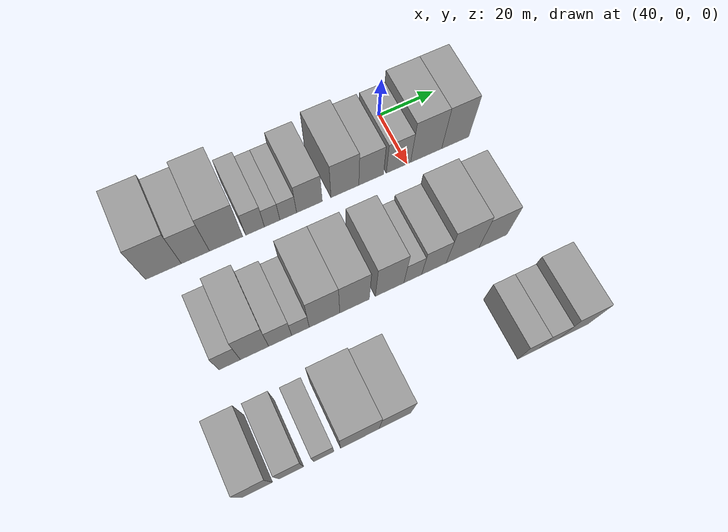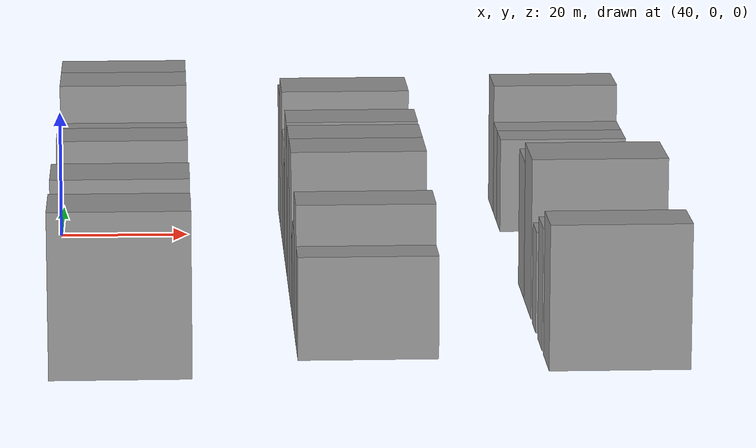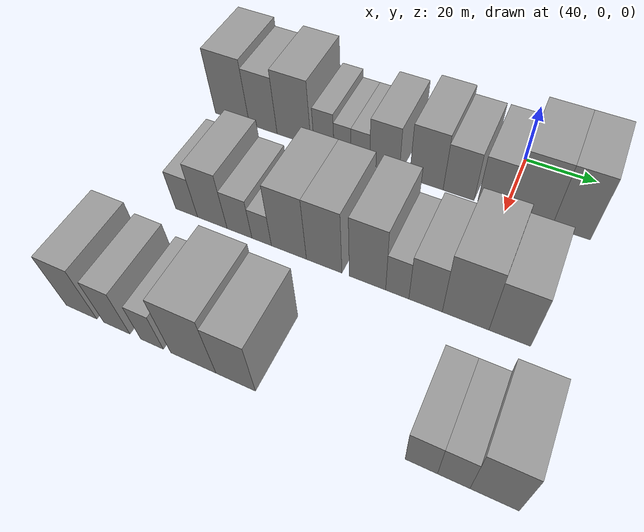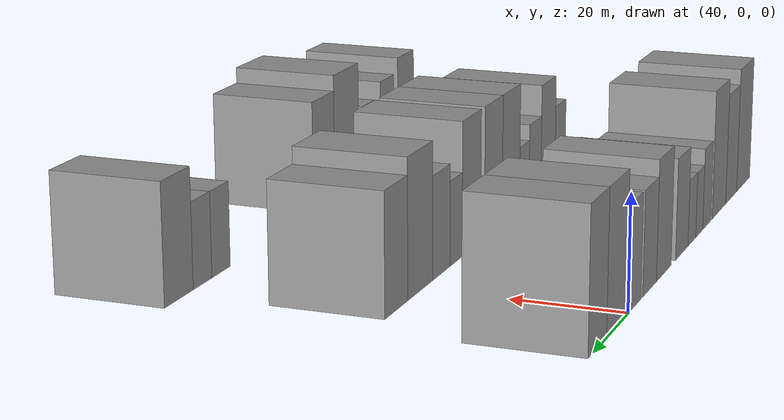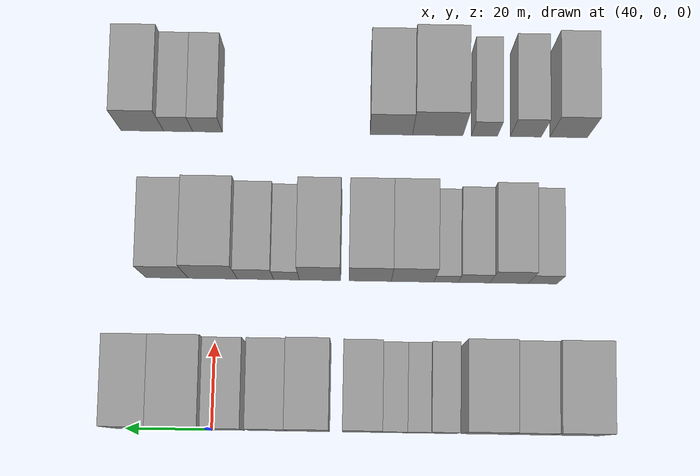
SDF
<sdf version="1.6">
 <world name="default">
  <model name="building_30">
   <static>1</static>
   <pose>50.0000 -83.1273 0 0.000000 0.000000 0.000000</pose>
   <link name="link">
    <pose>0 0 12.00 0 0 0</pose>
    <collision name="collision"><geometry><box><size>20.0000 11.5656 24.0000</size></box></geometry></collision>
    <visual name="visual">
     <cast_shadows>0</cast_shadows>
     <geometry><box><size>20.0000 11.5656 24.0000</size></box></geometry>
     <material>
      <script>
       <uri>model://grey_wall/materials/scripts</uri>
       <uri>model://grey_wall/materials/textures</uri>
       <name>vrc/grey_wall</name>
      </script>
     </material>
    </visual>
   </link>
  </model>
  <model name="building_31">
   <static>1</static>
   <pose>50.0000 -72.7295 0 0.000000 0.000000 0.000000</pose>
   <link name="link">
    <pose>0 0 10.50 0 0 0</pose>
    <collision name="collision"><geometry><box><size>20.0000 9.2299 21.0000</size></box></geometry></collision>
    <visual name="visual">
     <cast_shadows>0</cast_shadows>
     <geometry><box><size>20.0000 9.2299 21.0000</size></box></geometry>
     <material>
      <script>
       <uri>model://grey_wall/materials/scripts</uri>
       <uri>model://grey_wall/materials/textures</uri>
       <name>vrc/grey_wall</name>
      </script>
     </material>
    </visual>
   </link>
  </model>
  <model name="building_32">
   <static>1</static>
   <pose>50.0000 -62.6246 0 0.000000 0.000000 0.000000</pose>
   <link name="link">
    <pose>0 0 12.00 0 0 0</pose>
    <collision name="collision"><geometry><box><size>20.0000 10.9799 24.0000</size></box></geometry></collision>
    <visual name="visual">
     <cast_shadows>0</cast_shadows>
     <geometry><box><size>20.0000 10.9799 24.0000</size></box></geometry>
     <material>
      <script>
       <uri>model://grey_wall/materials/scripts</uri>
       <uri>model://grey_wall/materials/textures</uri>
       <name>vrc/grey_wall</name>
      </script>
     </material>
    </visual>
   </link>
  </model>
  <model name="building_33">
   <static>1</static>
   <pose>50.0000 -52.9839 0 0.000000 0.000000 0.000000</pose>
   <link name="link">
    <pose>0 0 7.50 0 0 0</pose>
    <collision name="collision"><geometry><box><size>20.0000 6.3014 15.0000</size></box></geometry></collision>
    <visual name="visual">
     <cast_shadows>0</cast_shadows>
     <geometry><box><size>20.0000 6.3014 15.0000</size></box></geometry>
     <material>
      <script>
       <uri>model://grey_wall/materials/scripts</uri>
       <uri>model://grey_wall/materials/textures</uri>
       <name>vrc/grey_wall</name>
      </script>
     </material>
    </visual>
   </link>
  </model>
  <model name="building_34">
   <static>1</static>
   <pose>50.0000 -47.2102 0 0.000000 0.000000 0.000000</pose>
   <link name="link">
    <pose>0 0 6.00 0 0 0</pose>
    <collision name="collision"><geometry><box><size>20.0000 5.2459 12.0000</size></box></geometry></collision>
    <visual name="visual">
     <cast_shadows>0</cast_shadows>
     <geometry><box><size>20.0000 5.2459 12.0000</size></box></geometry>
     <material>
      <script>
       <uri>model://grey_wall/materials/scripts</uri>
       <uri>model://grey_wall/materials/textures</uri>
       <name>vrc/grey_wall</name>
      </script>
     </material>
    </visual>
   </link>
  </model>
  <model name="building_35">
   <static>1</static>
   <pose>50.0000 -41.7493 0 0.000000 0.000000 0.000000</pose>
   <link name="link">
    <pose>0 0 6.00 0 0 0</pose>
    <collision name="collision"><geometry><box><size>20.0000 5.6759 12.0000</size></box></geometry></collision>
    <visual name="visual">
     <cast_shadows>0</cast_shadows>
     <geometry><box><size>20.0000 5.6759 12.0000</size></box></geometry>
     <material>
      <script>
       <uri>model://grey_wall/materials/scripts</uri>
       <uri>model://grey_wall/materials/textures</uri>
       <name>vrc/grey_wall</name>
      </script>
     </material>
    </visual>
   </link>
  </model>
  <model name="building_36">
   <static>1</static>
   <pose>50.0000 -34.4840 0 0.000000 0.000000 0.000000</pose>
   <link name="link">
    <pose>0 0 9.00 0 0 0</pose>
    <collision name="collision"><geometry><box><size>20.0000 8.8548 18.0000</size></box></geometry></collision>
    <visual name="visual">
     <cast_shadows>0</cast_shadows>
     <geometry><box><size>20.0000 8.8548 18.0000</size></box></geometry>
     <material>
      <script>
       <uri>model://grey_wall/materials/scripts</uri>
       <uri>model://grey_wall/materials/textures</uri>
       <name>vrc/grey_wall</name>
      </script>
     </material>
    </visual>
   </link>
  </model>
  <model name="building_37">
   <static>1</static>
   <pose>50.0000 -22.1702 0 0.000000 0.000000 0.000000</pose>
   <link name="link">
    <pose>0 0 10.50 0 0 0</pose>
    <collision name="collision"><geometry><box><size>20.0000 9.7728 21.0000</size></box></geometry></collision>
    <visual name="visual">
     <cast_shadows>0</cast_shadows>
     <geometry><box><size>20.0000 9.7728 21.0000</size></box></geometry>
     <material>
      <script>
       <uri>model://grey_wall/materials/scripts</uri>
       <uri>model://grey_wall/materials/textures</uri>
       <name>vrc/grey_wall</name>
      </script>
     </material>
    </visual>
   </link>
  </model>
  <model name="building_38">
   <static>1</static>
   <pose>50.0000 -12.9144 0 0.000000 0.000000 0.000000</pose>
   <link name="link">
    <pose>0 0 9.00 0 0 0</pose>
    <collision name="collision"><geometry><box><size>20.0000 8.7387 18.0000</size></box></geometry></collision>
    <visual name="visual">
     <cast_shadows>0</cast_shadows>
     <geometry><box><size>20.0000 8.7387 18.0000</size></box></geometry>
     <material>
      <script>
       <uri>model://grey_wall/materials/scripts</uri>
       <uri>model://grey_wall/materials/textures</uri>
       <name>vrc/grey_wall</name>
      </script>
     </material>
    </visual>
   </link>
  </model>
  <model name="building_39">
   <static>1</static>
   <pose>50.0000 -3.1798 0 0.000000 0.000000 0.000000</pose>
   <link name="link">
    <pose>0 0 9.00 0 0 0</pose>
    <collision name="collision"><geometry><box><size>20.0000 8.7305 18.0000</size></box></geometry></collision>
    <visual name="visual">
     <cast_shadows>0</cast_shadows>
     <geometry><box><size>20.0000 8.7305 18.0000</size></box></geometry>
     <material>
      <script>
       <uri>model://grey_wall/materials/scripts</uri>
       <uri>model://grey_wall/materials/textures</uri>
       <name>vrc/grey_wall</name>
      </script>
     </material>
    </visual>
   </link>
  </model>
  <model name="building_40">
   <static>1</static>
   <pose>50.0000 6.8428 0 0.000000 0.000000 0.000000</pose>
   <link name="link">
    <pose>0 0 12.00 0 0 0</pose>
    <collision name="collision"><geometry><box><size>20.0000 11.3148 24.0000</size></box></geometry></collision>
    <visual name="visual">
     <cast_shadows>0</cast_shadows>
     <geometry><box><size>20.0000 11.3148 24.0000</size></box></geometry>
     <material>
      <script>
       <uri>model://grey_wall/materials/scripts</uri>
       <uri>model://grey_wall/materials/textures</uri>
       <name>vrc/grey_wall</name>
      </script>
     </material>
    </visual>
   </link>
  </model>
  <model name="building_41">
   <static>1</static>
   <pose>50.0000 17.4917 0 0.000000 0.000000 0.000000</pose>
   <link name="link">
    <pose>0 0 12.00 0 0 0</pose>
    <collision name="collision"><geometry><box><size>20.0000 9.9828 24.0000</size></box></geometry></collision>
    <visual name="visual">
     <cast_shadows>0</cast_shadows>
     <geometry><box><size>20.0000 9.9828 24.0000</size></box></geometry>
     <material>
      <script>
       <uri>model://grey_wall/materials/scripts</uri>
       <uri>model://grey_wall/materials/textures</uri>
       <name>vrc/grey_wall</name>
      </script>
     </material>
    </visual>
   </link>
  </model>
  <model name="building_115">
   <static>1</static>
   <pose>85.0000 -76.0571 0 0.000000 0.000000 0.000000</pose>
   <link name="link">
    <pose>0 0 7.50 0 0 0</pose>
    <collision name="collision"><geometry><box><size>20.0000 6.7553 15.0000</size></box></geometry></collision>
    <visual name="visual">
     <cast_shadows>0</cast_shadows>
     <geometry><box><size>20.0000 6.7553 15.0000</size></box></geometry>
     <material>
      <script>
       <uri>model://grey_wall/materials/scripts</uri>
       <uri>model://grey_wall/materials/textures</uri>
       <name>vrc/grey_wall</name>
      </script>
     </material>
    </visual>
   </link>
  </model>
  <model name="building_116">
   <static>1</static>
   <pose>85.0000 -68.2027 0 0.000000 0.000000 0.000000</pose>
   <link name="link">
    <pose>0 0 10.50 0 0 0</pose>
    <collision name="collision"><geometry><box><size>20.0000 8.9535 21.0000</size></box></geometry></collision>
    <visual name="visual">
     <cast_shadows>0</cast_shadows>
     <geometry><box><size>20.0000 8.9535 21.0000</size></box></geometry>
     <material>
      <script>
       <uri>model://grey_wall/materials/scripts</uri>
       <uri>model://grey_wall/materials/textures</uri>
       <name>vrc/grey_wall</name>
      </script>
     </material>
    </visual>
   </link>
  </model>
  <model name="building_117">
   <static>1</static>
   <pose>85.0000 -60.0503 0 0.000000 0.000000 0.000000</pose>
   <link name="link">
    <pose>0 0 7.50 0 0 0</pose>
    <collision name="collision"><geometry><box><size>20.0000 7.3514 15.0000</size></box></geometry></collision>
    <visual name="visual">
     <cast_shadows>0</cast_shadows>
     <geometry><box><size>20.0000 7.3514 15.0000</size></box></geometry>
     <material>
      <script>
       <uri>model://grey_wall/materials/scripts</uri>
       <uri>model://grey_wall/materials/textures</uri>
       <name>vrc/grey_wall</name>
      </script>
     </material>
    </visual>
   </link>
  </model>
  <model name="building_118">
   <static>1</static>
   <pose>85.0000 -53.5465 0 0.000000 0.000000 0.000000</pose>
   <link name="link">
    <pose>0 0 6.00 0 0 0</pose>
    <collision name="collision"><geometry><box><size>20.0000 5.6562 12.0000</size></box></geometry></collision>
    <visual name="visual">
     <cast_shadows>0</cast_shadows>
     <geometry><box><size>20.0000 5.6562 12.0000</size></box></geometry>
     <material>
      <script>
       <uri>model://grey_wall/materials/scripts</uri>
       <uri>model://grey_wall/materials/textures</uri>
       <name>vrc/grey_wall</name>
      </script>
     </material>
    </visual>
   </link>
  </model>
  <model name="building_119">
   <static>1</static>
   <pose>85.0000 -45.7519 0 0.000000 0.000000 0.000000</pose>
   <link name="link">
    <pose>0 0 12.00 0 0 0</pose>
    <collision name="collision"><geometry><box><size>20.0000 9.9330 24.0000</size></box></geometry></collision>
    <visual name="visual">
     <cast_shadows>0</cast_shadows>
     <geometry><box><size>20.0000 9.9330 24.0000</size></box></geometry>
     <material>
      <script>
       <uri>model://grey_wall/materials/scripts</uri>
       <uri>model://grey_wall/materials/textures</uri>
       <name>vrc/grey_wall</name>
      </script>
     </material>
    </visual>
   </link>
  </model>
  <model name="building_120">
   <static>1</static>
   <pose>85.0000 -35.9024 0 0.000000 0.000000 0.000000</pose>
   <link name="link">
    <pose>0 0 12.00 0 0 0</pose>
    <collision name="collision"><geometry><box><size>20.0000 9.7659 24.0000</size></box></geometry></collision>
    <visual name="visual">
     <cast_shadows>0</cast_shadows>
     <geometry><box><size>20.0000 9.7659 24.0000</size></box></geometry>
     <material>
      <script>
       <uri>model://grey_wall/materials/scripts</uri>
       <uri>model://grey_wall/materials/textures</uri>
       <name>vrc/grey_wall</name>
      </script>
     </material>
    </visual>
   </link>
  </model>
  <model name="building_121">
   <static>1</static>
   <pose>85.0000 -24.2020 0 0.000000 0.000000 0.000000</pose>
   <link name="link">
    <pose>0 0 12.00 0 0 0</pose>
    <collision name="collision"><geometry><box><size>20.0000 9.6350 24.0000</size></box></geometry></collision>
    <visual name="visual">
     <cast_shadows>0</cast_shadows>
     <geometry><box><size>20.0000 9.6350 24.0000</size></box></geometry>
     <material>
      <script>
       <uri>model://grey_wall/materials/scripts</uri>
       <uri>model://grey_wall/materials/textures</uri>
       <name>vrc/grey_wall</name>
      </script>
     </material>
    </visual>
   </link>
  </model>
  <model name="building_122">
   <static>1</static>
   <pose>85.0000 -16.3816 0 0.000000 0.000000 0.000000</pose>
   <link name="link">
    <pose>0 0 7.50 0 0 0</pose>
    <collision name="collision"><geometry><box><size>20.0000 6.0057 15.0000</size></box></geometry></collision>
    <visual name="visual">
     <cast_shadows>0</cast_shadows>
     <geometry><box><size>20.0000 6.0057 15.0000</size></box></geometry>
     <material>
      <script>
       <uri>model://grey_wall/materials/scripts</uri>
       <uri>model://grey_wall/materials/textures</uri>
       <name>vrc/grey_wall</name>
      </script>
     </material>
    </visual>
   </link>
  </model>
  <model name="building_123">
   <static>1</static>
   <pose>85.0000 -9.1511 0 0.000000 0.000000 0.000000</pose>
   <link name="link">
    <pose>0 0 9.00 0 0 0</pose>
    <collision name="collision"><geometry><box><size>20.0000 8.4552 18.0000</size></box></geometry></collision>
    <visual name="visual">
     <cast_shadows>0</cast_shadows>
     <geometry><box><size>20.0000 8.4552 18.0000</size></box></geometry>
     <material>
      <script>
       <uri>model://grey_wall/materials/scripts</uri>
       <uri>model://grey_wall/materials/textures</uri>
       <name>vrc/grey_wall</name>
      </script>
     </material>
    </visual>
   </link>
  </model>
  <model name="building_124">
   <static>1</static>
   <pose>85.0000 0.7955 0 0.000000 0.000000 0.000000</pose>
   <link name="link">
    <pose>0 0 12.00 0 0 0</pose>
    <collision name="collision"><geometry><box><size>20.0000 11.4381 24.0000</size></box></geometry></collision>
    <visual name="visual">
     <cast_shadows>0</cast_shadows>
     <geometry><box><size>20.0000 11.4381 24.0000</size></box></geometry>
     <material>
      <script>
       <uri>model://grey_wall/materials/scripts</uri>
       <uri>model://grey_wall/materials/textures</uri>
       <name>vrc/grey_wall</name>
      </script>
     </material>
    </visual>
   </link>
  </model>
  <model name="building_125">
   <static>1</static>
   <pose>85.0000 11.4675 0 0.000000 0.000000 0.000000</pose>
   <link name="link">
    <pose>0 0 10.50 0 0 0</pose>
    <collision name="collision"><geometry><box><size>20.0000 9.9059 21.0000</size></box></geometry></collision>
    <visual name="visual">
     <cast_shadows>0</cast_shadows>
     <geometry><box><size>20.0000 9.9059 21.0000</size></box></geometry>
     <material>
      <script>
       <uri>model://grey_wall/materials/scripts</uri>
       <uri>model://grey_wall/materials/textures</uri>
       <name>vrc/grey_wall</name>
      </script>
     </material>
    </visual>
   </link>
  </model>
  <model name="building_198">
   <static>1</static>
   <pose>120.0000 -82.3718 0 0.000000 0.000000 0.000000</pose>
   <link name="link">
    <pose>0 0 10.50 0 0 0</pose>
    <collision name="collision"><geometry><box><size>20.0000 8.9268 21.0000</size></box></geometry></collision>
    <visual name="visual">
     <cast_shadows>0</cast_shadows>
     <geometry><box><size>20.0000 8.9268 21.0000</size></box></geometry>
     <material>
      <script>
       <uri>model://grey_wall/materials/scripts</uri>
       <uri>model://grey_wall/materials/textures</uri>
       <name>vrc/grey_wall</name>
      </script>
     </material>
    </visual>
   </link>
  </model>
  <model name="building_199">
   <static>1</static>
   <pose>120.0000 -72.2180 0 0.000000 0.000000 0.000000</pose>
   <link name="link">
    <pose>0 0 9.00 0 0 0</pose>
    <collision name="collision"><geometry><box><size>20.0000 7.3807 18.0000</size></box></geometry></collision>
    <visual name="visual">
     <cast_shadows>0</cast_shadows>
     <geometry><box><size>20.0000 7.3807 18.0000</size></box></geometry>
     <material>
      <script>
       <uri>model://grey_wall/materials/scripts</uri>
       <uri>model://grey_wall/materials/textures</uri>
       <name>vrc/grey_wall</name>
      </script>
     </material>
    </visual>
   </link>
  </model>
  <model name="building_200">
   <static>1</static>
   <pose>120.0000 -62.4329 0 0.000000 0.000000 0.000000</pose>
   <link name="link">
    <pose>0 0 7.50 0 0 0</pose>
    <collision name="collision"><geometry><box><size>20.0000 6.1895 15.0000</size></box></geometry></collision>
    <visual name="visual">
     <cast_shadows>0</cast_shadows>
     <geometry><box><size>20.0000 6.1895 15.0000</size></box></geometry>
     <material>
      <script>
       <uri>model://grey_wall/materials/scripts</uri>
       <uri>model://grey_wall/materials/textures</uri>
       <name>vrc/grey_wall</name>
      </script>
     </material>
    </visual>
   </link>
  </model>
  <model name="building_201">
   <static>1</static>
   <pose>120.0000 -51.3755 0 0.000000 0.000000 0.000000</pose>
   <link name="link">
    <pose>0 0 12.00 0 0 0</pose>
    <collision name="collision"><geometry><box><size>20.0000 11.9252 24.0000</size></box></geometry></collision>
    <visual name="visual">
     <cast_shadows>0</cast_shadows>
     <geometry><box><size>20.0000 11.9252 24.0000</size></box></geometry>
     <material>
      <script>
       <uri>model://grey_wall/materials/scripts</uri>
       <uri>model://grey_wall/materials/textures</uri>
       <name>vrc/grey_wall</name>
      </script>
     </material>
    </visual>
   </link>
  </model>
  <model name="building_202">
   <static>1</static>
   <pose>120.0000 -40.4064 0 0.000000 0.000000 0.000000</pose>
   <link name="link">
    <pose>0 0 10.50 0 0 0</pose>
    <collision name="collision"><geometry><box><size>20.0000 10.0130 21.0000</size></box></geometry></collision>
    <visual name="visual">
     <cast_shadows>0</cast_shadows>
     <geometry><box><size>20.0000 10.0130 21.0000</size></box></geometry>
     <material>
      <script>
       <uri>model://grey_wall/materials/scripts</uri>
       <uri>model://grey_wall/materials/textures</uri>
       <name>vrc/grey_wall</name>
      </script>
     </material>
    </visual>
   </link>
  </model>
  <model name="building_203">
   <static>1</static>
   <pose>120.0000 3.1449 0 0.000000 0.000000 0.000000</pose>
   <link name="link">
    <pose>0 0 7.50 0 0 0</pose>
    <collision name="collision"><geometry><box><size>20.0000 7.0298 15.0000</size></box></geometry></collision>
    <visual name="visual">
     <cast_shadows>0</cast_shadows>
     <geometry><box><size>20.0000 7.0298 15.0000</size></box></geometry>
     <material>
      <script>
       <uri>model://grey_wall/materials/scripts</uri>
       <uri>model://grey_wall/materials/textures</uri>
       <name>vrc/grey_wall</name>
      </script>
     </material>
    </visual>
   </link>
  </model>
  <model name="building_204">
   <static>1</static>
   <pose>120.0000 10.0901 0 0.000000 0.000000 0.000000</pose>
   <link name="link">
    <pose>0 0 7.50 0 0 0</pose>
    <collision name="collision"><geometry><box><size>20.0000 6.8606 15.0000</size></box></geometry></collision>
    <visual name="visual">
     <cast_shadows>0</cast_shadows>
     <geometry><box><size>20.0000 6.8606 15.0000</size></box></geometry>
     <material>
      <script>
       <uri>model://grey_wall/materials/scripts</uri>
       <uri>model://grey_wall/materials/textures</uri>
       <name>vrc/grey_wall</name>
      </script>
     </material>
    </visual>
   </link>
  </model>
  <model name="building_205">
   <static>1</static>
   <pose>120.0000 18.5708 0 0.000000 0.000000 0.000000</pose>
   <link name="link">
    <pose>0 0 10.50 0 0 0</pose>
    <collision name="collision"><geometry><box><size>20.0000 10.1008 21.0000</size></box></geometry></collision>
    <visual name="visual">
     <cast_shadows>0</cast_shadows>
     <geometry><box><size>20.0000 10.1008 21.0000</size></box></geometry>
     <material>
      <script>
       <uri>model://grey_wall/materials/scripts</uri>
       <uri>model://grey_wall/materials/textures</uri>
       <name>vrc/grey_wall</name>
      </script>
     </material>
    </visual>
   </link>
  </model>
 </world>
</sdf>
